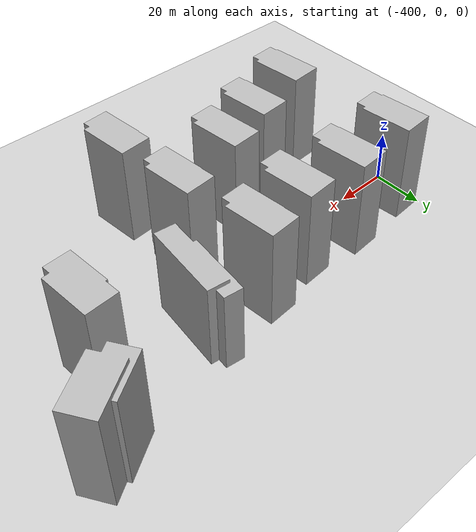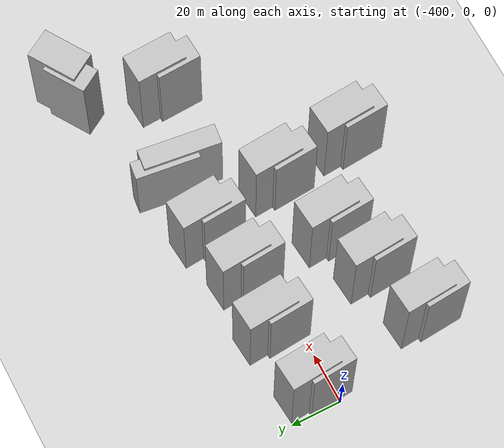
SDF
<sdf version="1.7">
 <world name="default">
  <model name="ground_plane">
   <static>1</static>
   <link name="link">
    <collision name="collision">
     <geometry><plane><normal>0 0 1</normal><size>100 100</size></plane></geometry>
     <surface><friction><ode><mu>100</mu><mu2>50</mu2></ode></friction></surface>
    </collision>
    <visual name="visual">
     <cast_shadows>0</cast_shadows>
     <geometry><plane><normal>0 0 1</normal><size>100 100</size></plane></geometry>
     <material>
      <script><uri>file://media/materials/scripts/gazebo.material</uri><name>Gazebo/Grey</name></script>
     </material>
    </visual>
   </link>
  </model>
  <model name="apartment1_4_clone_6">
   <static>1</static>
   <link name="link_0">
    <inertial>
     <mass>1</mass>
     <inertia>
      <ixx>0.166667</ixx>
      <ixy>0</ixy>
      <ixz>0</ixz>
      <iyy>0.166667</iyy>
      <iyz>0</iyz>
      <izz>0.166667</izz>
     </inertia>
    </inertial>
    <pose>1e-06 -0 0 0 -0 0</pose>
    <visual name="visual">
     <geometry>
      <mesh><uri>model://apartment1/scripts/apartment1.dae</uri><scale>0.5 0.2 0.33</scale></mesh>
     </geometry>
     <material>
      <lighting>1</lighting>
      <script><uri>model://apartment1/scripts/apartment1.jpg</uri><name>__default__</name></script>
      <shader type="pixel"/>
     </material>
    </visual>
    <collision name="collision">
     <geometry>
      <mesh><uri>model://apartment1/scripts/apartment1.dae</uri><scale>0.5 0.2 0.33</scale></mesh>
     </geometry>
     <surface>
      <friction>
       <ode><mu>1</mu><mu2>1</mu2><fdir1>0 0 0</fdir1><slip1>0</slip1><slip2>0</slip2></ode>
       <torsional>
        <coefficient>1</coefficient>
        <patch_radius>0</patch_radius>
        <surface_radius>0</surface_radius>
        <use_patch_radius>1</use_patch_radius>
        <ode><slip>0</slip></ode>
       </torsional>
      </friction>
      <bounce><restitution_coefficient>0</restitution_coefficient><threshold>1e+06</threshold></bounce>
      <contact>
       <collide_without_contact>0</collide_without_contact>
       <collide_without_contact_bitmask>1</collide_without_contact_bitmask>
       <collide_bitmask>1</collide_bitmask>
       <ode>
        <soft_cfm>0</soft_cfm>
        <soft_erp>0.2</soft_erp>
        <kp>1e+13</kp>
        <kd>1</kd>
        <max_vel>0.01</max_vel>
        <min_depth>0</min_depth>
       </ode>
       <bullet>
        <split_impulse>1</split_impulse>
        <split_impulse_penetration_threshold>-0.01</split_impulse_penetration_threshold>
        <soft_cfm>0</soft_cfm>
        <soft_erp>0.2</soft_erp>
        <kp>1e+13</kp>
        <kd>1</kd>
       </bullet>
      </contact>
     </surface>
    </collision>
   </link>
   <static>0</static>
   <pose>-262.946 4.88781 0 0 -0 1.62948</pose>
  </model>
  <model name="apartment1_4_clone_10">
   <static>1</static>
   <link name="link_0">
    <inertial>
     <mass>1</mass>
     <inertia>
      <ixx>0.166667</ixx>
      <ixy>0</ixy>
      <ixz>0</ixz>
      <iyy>0.166667</iyy>
      <iyz>0</iyz>
      <izz>0.166667</izz>
     </inertia>
    </inertial>
    <pose>1e-06 -0 0 0 -0 0</pose>
    <visual name="visual">
     <geometry>
      <mesh><uri>model://apartment1/scripts/apartment1.dae</uri><scale>0.5 0.2 0.33</scale></mesh>
     </geometry>
     <material>
      <lighting>1</lighting>
      <script><uri>model://apartment1/scripts/apartment1.jpg</uri><name>__default__</name></script>
      <shader type="pixel"/>
     </material>
    </visual>
    <collision name="collision">
     <geometry>
      <mesh><uri>model://apartment1/scripts/apartment1.dae</uri><scale>0.5 0.2 0.33</scale></mesh>
     </geometry>
     <surface>
      <friction>
       <ode><mu>1</mu><mu2>1</mu2><fdir1>0 0 0</fdir1><slip1>0</slip1><slip2>0</slip2></ode>
       <torsional>
        <coefficient>1</coefficient>
        <patch_radius>0</patch_radius>
        <surface_radius>0</surface_radius>
        <use_patch_radius>1</use_patch_radius>
        <ode><slip>0</slip></ode>
       </torsional>
      </friction>
      <bounce><restitution_coefficient>0</restitution_coefficient><threshold>1e+06</threshold></bounce>
      <contact>
       <collide_without_contact>0</collide_without_contact>
       <collide_without_contact_bitmask>1</collide_without_contact_bitmask>
       <collide_bitmask>1</collide_bitmask>
       <ode>
        <soft_cfm>0</soft_cfm>
        <soft_erp>0.2</soft_erp>
        <kp>1e+13</kp>
        <kd>1</kd>
        <max_vel>0.01</max_vel>
        <min_depth>0</min_depth>
       </ode>
       <bullet>
        <split_impulse>1</split_impulse>
        <split_impulse_penetration_threshold>-0.01</split_impulse_penetration_threshold>
        <soft_cfm>0</soft_cfm>
        <soft_erp>0.2</soft_erp>
        <kp>1e+13</kp>
        <kd>1</kd>
       </bullet>
      </contact>
     </surface>
    </collision>
   </link>
   <static>0</static>
   <pose>-246.029 35.2948 0 0 -0 0.56104</pose>
  </model>
  <model name="apartment1_4_clone_14_clone_clone_clone_1">
   <static>1</static>
   <link name="link_0">
    <inertial>
     <mass>1</mass>
     <inertia>
      <ixx>0.166667</ixx>
      <ixy>0</ixy>
      <ixz>0</ixz>
      <iyy>0.166667</iyy>
      <iyz>0</iyz>
      <izz>0.166667</izz>
     </inertia>
    </inertial>
    <pose>1e-06 -0 0 0 -0 0</pose>
    <visual name="visual">
     <geometry>
      <mesh><uri>model://apartment1/scripts/apartment1.dae</uri><scale>0.5 0.2 0.33</scale></mesh>
     </geometry>
     <material>
      <lighting>1</lighting>
      <script><uri>model://apartment1/scripts/apartment1.jpg</uri><name>__default__</name></script>
      <shader type="pixel"/>
     </material>
    </visual>
    <collision name="collision">
     <geometry>
      <mesh><uri>model://apartment1/scripts/apartment1.dae</uri><scale>0.5 0.2 0.33</scale></mesh>
     </geometry>
     <surface>
      <friction>
       <ode><mu>1</mu><mu2>1</mu2><fdir1>0 0 0</fdir1><slip1>0</slip1><slip2>0</slip2></ode>
       <torsional>
        <coefficient>1</coefficient>
        <patch_radius>0</patch_radius>
        <surface_radius>0</surface_radius>
        <use_patch_radius>1</use_patch_radius>
        <ode><slip>0</slip></ode>
       </torsional>
      </friction>
      <bounce><restitution_coefficient>0</restitution_coefficient><threshold>1e+06</threshold></bounce>
      <contact>
       <collide_without_contact>0</collide_without_contact>
       <collide_without_contact_bitmask>1</collide_without_contact_bitmask>
       <collide_bitmask>1</collide_bitmask>
       <ode>
        <soft_cfm>0</soft_cfm>
        <soft_erp>0.2</soft_erp>
        <kp>1e+13</kp>
        <kd>1</kd>
        <max_vel>0.01</max_vel>
        <min_depth>0</min_depth>
       </ode>
       <bullet>
        <split_impulse>1</split_impulse>
        <split_impulse_penetration_threshold>-0.01</split_impulse_penetration_threshold>
        <soft_cfm>0</soft_cfm>
        <soft_erp>0.2</soft_erp>
        <kp>1e+13</kp>
        <kd>1</kd>
       </bullet>
      </contact>
     </surface>
    </collision>
   </link>
   <static>0</static>
   <pose>-312.253 -46.4439 0 0 -0 1.65176</pose>
  </model>
  <model name="apartment1_4_clone_14_clone_clone_clone_2">
   <static>1</static>
   <link name="link_0">
    <inertial>
     <mass>1</mass>
     <inertia>
      <ixx>0.166667</ixx>
      <ixy>0</ixy>
      <ixz>0</ixz>
      <iyy>0.166667</iyy>
      <iyz>0</iyz>
      <izz>0.166667</izz>
     </inertia>
    </inertial>
    <pose>1e-06 -0 0 0 -0 0</pose>
    <visual name="visual">
     <geometry>
      <mesh><uri>model://apartment1/scripts/apartment1.dae</uri><scale>0.5 0.2 0.33</scale></mesh>
     </geometry>
     <material>
      <lighting>1</lighting>
      <script><uri>model://apartment1/scripts/apartment1.jpg</uri><name>__default__</name></script>
      <shader type="pixel"/>
     </material>
    </visual>
    <collision name="collision">
     <geometry>
      <mesh><uri>model://apartment1/scripts/apartment1.dae</uri><scale>0.5 0.2 0.33</scale></mesh>
     </geometry>
     <surface>
      <friction>
       <ode><mu>1</mu><mu2>1</mu2><fdir1>0 0 0</fdir1><slip1>0</slip1><slip2>0</slip2></ode>
       <torsional>
        <coefficient>1</coefficient>
        <patch_radius>0</patch_radius>
        <surface_radius>0</surface_radius>
        <use_patch_radius>1</use_patch_radius>
        <ode><slip>0</slip></ode>
       </torsional>
      </friction>
      <bounce><restitution_coefficient>0</restitution_coefficient><threshold>1e+06</threshold></bounce>
      <contact>
       <collide_without_contact>0</collide_without_contact>
       <collide_without_contact_bitmask>1</collide_without_contact_bitmask>
       <collide_bitmask>1</collide_bitmask>
       <ode>
        <soft_cfm>0</soft_cfm>
        <soft_erp>0.2</soft_erp>
        <kp>1e+13</kp>
        <kd>1</kd>
        <max_vel>0.01</max_vel>
        <min_depth>0</min_depth>
       </ode>
       <bullet>
        <split_impulse>1</split_impulse>
        <split_impulse_penetration_threshold>-0.01</split_impulse_penetration_threshold>
        <soft_cfm>0</soft_cfm>
        <soft_erp>0.2</soft_erp>
        <kp>1e+13</kp>
        <kd>1</kd>
       </bullet>
      </contact>
     </surface>
    </collision>
   </link>
   <static>0</static>
   <pose>-315.153 -15.7968 0 0 -0 1.65176</pose>
  </model>
  <model name="apartment1_4_clone_14_clone_clone_clone_3">
   <static>1</static>
   <link name="link_0">
    <inertial>
     <mass>1</mass>
     <inertia>
      <ixx>0.166667</ixx>
      <ixy>0</ixy>
      <ixz>0</ixz>
      <iyy>0.166667</iyy>
      <iyz>0</iyz>
      <izz>0.166667</izz>
     </inertia>
    </inertial>
    <pose>1e-06 -0 0 0 -0 0</pose>
    <visual name="visual">
     <geometry>
      <mesh><uri>model://apartment1/scripts/apartment1.dae</uri><scale>0.5 0.2 0.33</scale></mesh>
     </geometry>
     <material>
      <lighting>1</lighting>
      <script><uri>model://apartment1/scripts/apartment1.jpg</uri><name>__default__</name></script>
      <shader type="pixel"/>
     </material>
    </visual>
    <collision name="collision">
     <geometry>
      <mesh><uri>model://apartment1/scripts/apartment1.dae</uri><scale>0.5 0.2 0.33</scale></mesh>
     </geometry>
     <surface>
      <friction>
       <ode><mu>1</mu><mu2>1</mu2><fdir1>0 0 0</fdir1><slip1>0</slip1><slip2>0</slip2></ode>
       <torsional>
        <coefficient>1</coefficient>
        <patch_radius>0</patch_radius>
        <surface_radius>0</surface_radius>
        <use_patch_radius>1</use_patch_radius>
        <ode><slip>0</slip></ode>
       </torsional>
      </friction>
      <bounce><restitution_coefficient>0</restitution_coefficient><threshold>1e+06</threshold></bounce>
      <contact>
       <collide_without_contact>0</collide_without_contact>
       <collide_without_contact_bitmask>1</collide_without_contact_bitmask>
       <collide_bitmask>1</collide_bitmask>
       <ode>
        <soft_cfm>0</soft_cfm>
        <soft_erp>0.2</soft_erp>
        <kp>1e+13</kp>
        <kd>1</kd>
        <max_vel>0.01</max_vel>
        <min_depth>0</min_depth>
       </ode>
       <bullet>
        <split_impulse>1</split_impulse>
        <split_impulse_penetration_threshold>-0.01</split_impulse_penetration_threshold>
        <soft_cfm>0</soft_cfm>
        <soft_erp>0.2</soft_erp>
        <kp>1e+13</kp>
        <kd>1</kd>
       </bullet>
      </contact>
     </surface>
    </collision>
   </link>
   <static>0</static>
   <pose>-321.485 16.5885 0 0 -0 1.65176</pose>
  </model>
  <model name="apartment1_4_clone_14_clone_clone_clone_4">
   <static>1</static>
   <link name="link_0">
    <inertial>
     <mass>1</mass>
     <inertia>
      <ixx>0.166667</ixx>
      <ixy>0</ixy>
      <ixz>0</ixz>
      <iyy>0.166667</iyy>
      <iyz>0</iyz>
      <izz>0.166667</izz>
     </inertia>
    </inertial>
    <pose>1e-06 -0 0 0 -0 0</pose>
    <visual name="visual">
     <geometry>
      <mesh><uri>model://apartment1/scripts/apartment1.dae</uri><scale>0.5 0.2 0.33</scale></mesh>
     </geometry>
     <material>
      <lighting>1</lighting>
      <script><uri>model://apartment1/scripts/apartment1.jpg</uri><name>__default__</name></script>
      <shader type="pixel"/>
     </material>
    </visual>
    <collision name="collision">
     <geometry>
      <mesh><uri>model://apartment1/scripts/apartment1.dae</uri><scale>0.5 0.2 0.33</scale></mesh>
     </geometry>
     <surface>
      <friction>
       <ode><mu>1</mu><mu2>1</mu2><fdir1>0 0 0</fdir1><slip1>0</slip1><slip2>0</slip2></ode>
       <torsional>
        <coefficient>1</coefficient>
        <patch_radius>0</patch_radius>
        <surface_radius>0</surface_radius>
        <use_patch_radius>1</use_patch_radius>
        <ode><slip>0</slip></ode>
       </torsional>
      </friction>
      <bounce><restitution_coefficient>0</restitution_coefficient><threshold>1e+06</threshold></bounce>
      <contact>
       <collide_without_contact>0</collide_without_contact>
       <collide_without_contact_bitmask>1</collide_without_contact_bitmask>
       <collide_bitmask>1</collide_bitmask>
       <ode>
        <soft_cfm>0</soft_cfm>
        <soft_erp>0.2</soft_erp>
        <kp>1e+13</kp>
        <kd>1</kd>
        <max_vel>0.01</max_vel>
        <min_depth>0</min_depth>
       </ode>
       <bullet>
        <split_impulse>1</split_impulse>
        <split_impulse_penetration_threshold>-0.01</split_impulse_penetration_threshold>
        <soft_cfm>0</soft_cfm>
        <soft_erp>0.2</soft_erp>
        <kp>1e+13</kp>
        <kd>1</kd>
       </bullet>
      </contact>
     </surface>
    </collision>
   </link>
   <static>0</static>
   <pose>-342.41 -23.9758 0 0 -0 1.65176</pose>
  </model>
  <model name="apartment1_4_clone_14_clone_clone_clone_5">
   <static>1</static>
   <link name="link_0">
    <inertial>
     <mass>1</mass>
     <inertia>
      <ixx>0.166667</ixx>
      <ixy>0</ixy>
      <ixz>0</ixz>
      <iyy>0.166667</iyy>
      <iyz>0</iyz>
      <izz>0.166667</izz>
     </inertia>
    </inertial>
    <pose>1e-06 -0 0 0 -0 0</pose>
    <visual name="visual">
     <geometry>
      <mesh><uri>model://apartment1/scripts/apartment1.dae</uri><scale>0.5 0.2 0.33</scale></mesh>
     </geometry>
     <material>
      <lighting>1</lighting>
      <script><uri>model://apartment1/scripts/apartment1.jpg</uri><name>__default__</name></script>
      <shader type="pixel"/>
     </material>
    </visual>
    <collision name="collision">
     <geometry>
      <mesh><uri>model://apartment1/scripts/apartment1.dae</uri><scale>0.5 0.2 0.33</scale></mesh>
     </geometry>
     <surface>
      <friction>
       <ode><mu>1</mu><mu2>1</mu2><fdir1>0 0 0</fdir1><slip1>0</slip1><slip2>0</slip2></ode>
       <torsional>
        <coefficient>1</coefficient>
        <patch_radius>0</patch_radius>
        <surface_radius>0</surface_radius>
        <use_patch_radius>1</use_patch_radius>
        <ode><slip>0</slip></ode>
       </torsional>
      </friction>
      <bounce><restitution_coefficient>0</restitution_coefficient><threshold>1e+06</threshold></bounce>
      <contact>
       <collide_without_contact>0</collide_without_contact>
       <collide_without_contact_bitmask>1</collide_without_contact_bitmask>
       <collide_bitmask>1</collide_bitmask>
       <ode>
        <soft_cfm>0</soft_cfm>
        <soft_erp>0.2</soft_erp>
        <kp>1e+13</kp>
        <kd>1</kd>
        <max_vel>0.01</max_vel>
        <min_depth>0</min_depth>
       </ode>
       <bullet>
        <split_impulse>1</split_impulse>
        <split_impulse_penetration_threshold>-0.01</split_impulse_penetration_threshold>
        <soft_cfm>0</soft_cfm>
        <soft_erp>0.2</soft_erp>
        <kp>1e+13</kp>
        <kd>1</kd>
       </bullet>
      </contact>
     </surface>
    </collision>
   </link>
   <static>0</static>
   <pose>-362.128 -30.839 0 0 -0 1.65176</pose>
  </model>
  <model name="apartment1_4_clone_14_clone_clone_clone_6">
   <static>1</static>
   <link name="link_0">
    <inertial>
     <mass>1</mass>
     <inertia>
      <ixx>0.166667</ixx>
      <ixy>0</ixy>
      <ixz>0</ixz>
      <iyy>0.166667</iyy>
      <iyz>0</iyz>
      <izz>0.166667</izz>
     </inertia>
    </inertial>
    <pose>1e-06 -0 0 0 -0 0</pose>
    <visual name="visual">
     <geometry>
      <mesh><uri>model://apartment1/scripts/apartment1.dae</uri><scale>0.5 0.2 0.33</scale></mesh>
     </geometry>
     <material>
      <lighting>1</lighting>
      <script><uri>model://apartment1/scripts/apartment1.jpg</uri><name>__default__</name></script>
      <shader type="pixel"/>
     </material>
    </visual>
    <collision name="collision">
     <geometry>
      <mesh><uri>model://apartment1/scripts/apartment1.dae</uri><scale>0.5 0.2 0.33</scale></mesh>
     </geometry>
     <surface>
      <friction>
       <ode><mu>1</mu><mu2>1</mu2><fdir1>0 0 0</fdir1><slip1>0</slip1><slip2>0</slip2></ode>
       <torsional>
        <coefficient>1</coefficient>
        <patch_radius>0</patch_radius>
        <surface_radius>0</surface_radius>
        <use_patch_radius>1</use_patch_radius>
        <ode><slip>0</slip></ode>
       </torsional>
      </friction>
      <bounce><restitution_coefficient>0</restitution_coefficient><threshold>1e+06</threshold></bounce>
      <contact>
       <collide_without_contact>0</collide_without_contact>
       <collide_without_contact_bitmask>1</collide_without_contact_bitmask>
       <collide_bitmask>1</collide_bitmask>
       <ode>
        <soft_cfm>0</soft_cfm>
        <soft_erp>0.2</soft_erp>
        <kp>1e+13</kp>
        <kd>1</kd>
        <max_vel>0.01</max_vel>
        <min_depth>0</min_depth>
       </ode>
       <bullet>
        <split_impulse>1</split_impulse>
        <split_impulse_penetration_threshold>-0.01</split_impulse_penetration_threshold>
        <soft_cfm>0</soft_cfm>
        <soft_erp>0.2</soft_erp>
        <kp>1e+13</kp>
        <kd>1</kd>
       </bullet>
      </contact>
     </surface>
    </collision>
   </link>
   <static>0</static>
   <pose>-385.845 -38.838 0 0 -0 1.65176</pose>
  </model>
  <model name="apartment1_4_clone_14_clone_clone_clone_8">
   <static>1</static>
   <link name="link_0">
    <inertial>
     <mass>1</mass>
     <inertia>
      <ixx>0.166667</ixx>
      <ixy>0</ixy>
      <ixz>0</ixz>
      <iyy>0.166667</iyy>
      <iyz>0</iyz>
      <izz>0.166667</izz>
     </inertia>
    </inertial>
    <pose>1e-06 -0 0 0 -0 0</pose>
    <visual name="visual">
     <geometry>
      <mesh><uri>model://apartment1/scripts/apartment1.dae</uri><scale>0.5 0.2 0.33</scale></mesh>
     </geometry>
     <material>
      <lighting>1</lighting>
      <script><uri>model://apartment1/scripts/apartment1.jpg</uri><name>__default__</name></script>
      <shader type="pixel"/>
     </material>
    </visual>
    <collision name="collision">
     <geometry>
      <mesh><uri>model://apartment1/scripts/apartment1.dae</uri><scale>0.5 0.2 0.33</scale></mesh>
     </geometry>
     <surface>
      <friction>
       <ode><mu>1</mu><mu2>1</mu2><fdir1>0 0 0</fdir1><slip1>0</slip1><slip2>0</slip2></ode>
       <torsional>
        <coefficient>1</coefficient>
        <patch_radius>0</patch_radius>
        <surface_radius>0</surface_radius>
        <use_patch_radius>1</use_patch_radius>
        <ode><slip>0</slip></ode>
       </torsional>
      </friction>
      <bounce><restitution_coefficient>0</restitution_coefficient><threshold>1e+06</threshold></bounce>
      <contact>
       <collide_without_contact>0</collide_without_contact>
       <collide_without_contact_bitmask>1</collide_without_contact_bitmask>
       <collide_bitmask>1</collide_bitmask>
       <ode>
        <soft_cfm>0</soft_cfm>
        <soft_erp>0.2</soft_erp>
        <kp>1e+13</kp>
        <kd>1</kd>
        <max_vel>0.01</max_vel>
        <min_depth>0</min_depth>
       </ode>
       <bullet>
        <split_impulse>1</split_impulse>
        <split_impulse_penetration_threshold>-0.01</split_impulse_penetration_threshold>
        <soft_cfm>0</soft_cfm>
        <soft_erp>0.2</soft_erp>
        <kp>1e+13</kp>
        <kd>1</kd>
       </bullet>
      </contact>
     </surface>
    </collision>
   </link>
   <static>0</static>
   <pose>-342.561 11.8072 0 0 -0 1.65176</pose>
  </model>
  <model name="apartment1_4_clone_14_clone_clone_clone_9">
   <static>1</static>
   <link name="link_0">
    <inertial>
     <mass>1</mass>
     <inertia>
      <ixx>0.166667</ixx>
      <ixy>0</ixy>
      <ixz>0</ixz>
      <iyy>0.166667</iyy>
      <iyz>0</iyz>
      <izz>0.166667</izz>
     </inertia>
    </inertial>
    <pose>1e-06 -0 0 0 -0 0</pose>
    <visual name="visual">
     <geometry>
      <mesh><uri>model://apartment1/scripts/apartment1.dae</uri><scale>0.5 0.2 0.33</scale></mesh>
     </geometry>
     <material>
      <lighting>1</lighting>
      <script><uri>model://apartment1/scripts/apartment1.jpg</uri><name>__default__</name></script>
      <shader type="pixel"/>
     </material>
    </visual>
    <collision name="collision">
     <geometry>
      <mesh><uri>model://apartment1/scripts/apartment1.dae</uri><scale>0.5 0.2 0.33</scale></mesh>
     </geometry>
     <surface>
      <friction>
       <ode><mu>1</mu><mu2>1</mu2><fdir1>0 0 0</fdir1><slip1>0</slip1><slip2>0</slip2></ode>
       <torsional>
        <coefficient>1</coefficient>
        <patch_radius>0</patch_radius>
        <surface_radius>0</surface_radius>
        <use_patch_radius>1</use_patch_radius>
        <ode><slip>0</slip></ode>
       </torsional>
      </friction>
      <bounce><restitution_coefficient>0</restitution_coefficient><threshold>1e+06</threshold></bounce>
      <contact>
       <collide_without_contact>0</collide_without_contact>
       <collide_without_contact_bitmask>1</collide_without_contact_bitmask>
       <collide_bitmask>1</collide_bitmask>
       <ode>
        <soft_cfm>0</soft_cfm>
        <soft_erp>0.2</soft_erp>
        <kp>1e+13</kp>
        <kd>1</kd>
        <max_vel>0.01</max_vel>
        <min_depth>0</min_depth>
       </ode>
       <bullet>
        <split_impulse>1</split_impulse>
        <split_impulse_penetration_threshold>-0.01</split_impulse_penetration_threshold>
        <soft_cfm>0</soft_cfm>
        <soft_erp>0.2</soft_erp>
        <kp>1e+13</kp>
        <kd>1</kd>
       </bullet>
      </contact>
     </surface>
    </collision>
   </link>
   <static>0</static>
   <pose>-392.183 9.98413 0 0 -0 1.65176</pose>
  </model>
  <model name="apartment1_4_clone_14_clone_clone_clone_10">
   <static>1</static>
   <link name="link_0">
    <inertial>
     <mass>1</mass>
     <inertia>
      <ixx>0.166667</ixx>
      <ixy>0</ixy>
      <ixz>0</ixz>
      <iyy>0.166667</iyy>
      <iyz>0</iyz>
      <izz>0.166667</izz>
     </inertia>
    </inertial>
    <pose>1e-06 -0 0 0 -0 0</pose>
    <visual name="visual">
     <geometry>
      <mesh><uri>model://apartment1/scripts/apartment1.dae</uri><scale>0.5 0.2 0.33</scale></mesh>
     </geometry>
     <material>
      <lighting>1</lighting>
      <script><uri>model://apartment1/scripts/apartment1.jpg</uri><name>__default__</name></script>
      <shader type="pixel"/>
     </material>
    </visual>
    <collision name="collision">
     <geometry>
      <mesh><uri>model://apartment1/scripts/apartment1.dae</uri><scale>0.5 0.2 0.33</scale></mesh>
     </geometry>
     <surface>
      <friction>
       <ode><mu>1</mu><mu2>1</mu2><fdir1>0 0 0</fdir1><slip1>0</slip1><slip2>0</slip2></ode>
       <torsional>
        <coefficient>1</coefficient>
        <patch_radius>0</patch_radius>
        <surface_radius>0</surface_radius>
        <use_patch_radius>1</use_patch_radius>
        <ode><slip>0</slip></ode>
       </torsional>
      </friction>
      <bounce><restitution_coefficient>0</restitution_coefficient><threshold>1e+06</threshold></bounce>
      <contact>
       <collide_without_contact>0</collide_without_contact>
       <collide_without_contact_bitmask>1</collide_without_contact_bitmask>
       <collide_bitmask>1</collide_bitmask>
       <ode>
        <soft_cfm>0</soft_cfm>
        <soft_erp>0.2</soft_erp>
        <kp>1e+13</kp>
        <kd>1</kd>
        <max_vel>0.01</max_vel>
        <min_depth>0</min_depth>
       </ode>
       <bullet>
        <split_impulse>1</split_impulse>
        <split_impulse_penetration_threshold>-0.01</split_impulse_penetration_threshold>
        <soft_cfm>0</soft_cfm>
        <soft_erp>0.2</soft_erp>
        <kp>1e+13</kp>
        <kd>1</kd>
       </bullet>
      </contact>
     </surface>
    </collision>
   </link>
   <static>0</static>
   <pose>-365.954 13.1033 0 0 -0 1.65176</pose>
  </model>
  <model name="apartment3_clone_13">
   <static>1</static>
   <link name="link_0">
    <inertial>
     <mass>1</mass>
     <inertia>
      <ixx>0.166667</ixx>
      <ixy>0</ixy>
      <ixz>0</ixz>
      <iyy>0.166667</iyy>
      <iyz>0</iyz>
      <izz>0.166667</izz>
     </inertia>
    </inertial>
    <pose>1e-06 -0 0 0 -0 0</pose>
    <visual name="visual">
     <geometry>
      <mesh><uri>model://apartment1/scripts/apartment1.dae</uri><scale>0.2 0.5 0.28</scale></mesh>
     </geometry>
     <material>
      <lighting>1</lighting>
      <script><uri>model://apartment1/scripts/apartment1.jpg</uri><name>__default__</name></script>
      <shader type="pixel"/>
     </material>
    </visual>
    <collision name="collision">
     <geometry>
      <mesh><uri>model://apartment1/scripts/apartment1.dae</uri><scale>0.2 0.5 0.28</scale></mesh>
     </geometry>
     <surface>
      <friction>
       <ode><mu>1</mu><mu2>1</mu2><fdir1>0 0 0</fdir1><slip1>0</slip1><slip2>0</slip2></ode>
       <torsional>
        <coefficient>1</coefficient>
        <patch_radius>0</patch_radius>
        <surface_radius>0</surface_radius>
        <use_patch_radius>1</use_patch_radius>
        <ode><slip>0</slip></ode>
       </torsional>
      </friction>
      <bounce><restitution_coefficient>0</restitution_coefficient><threshold>1e+06</threshold></bounce>
      <contact>
       <collide_without_contact>0</collide_without_contact>
       <collide_without_contact_bitmask>1</collide_without_contact_bitmask>
       <collide_bitmask>1</collide_bitmask>
       <ode>
        <soft_cfm>0</soft_cfm>
        <soft_erp>0.2</soft_erp>
        <kp>1e+13</kp>
        <kd>1</kd>
        <max_vel>0.01</max_vel>
        <min_depth>0</min_depth>
       </ode>
       <bullet>
        <split_impulse>1</split_impulse>
        <split_impulse_penetration_threshold>-0.01</split_impulse_penetration_threshold>
        <soft_cfm>0</soft_cfm>
        <soft_erp>0.2</soft_erp>
        <kp>1e+13</kp>
        <kd>1</kd>
       </bullet>
      </contact>
     </surface>
    </collision>
   </link>
   <static>0</static>
   <pose>-296.714 11.8752 0 0 0 -0.11616</pose>
  </model>
 </world>
</sdf>
